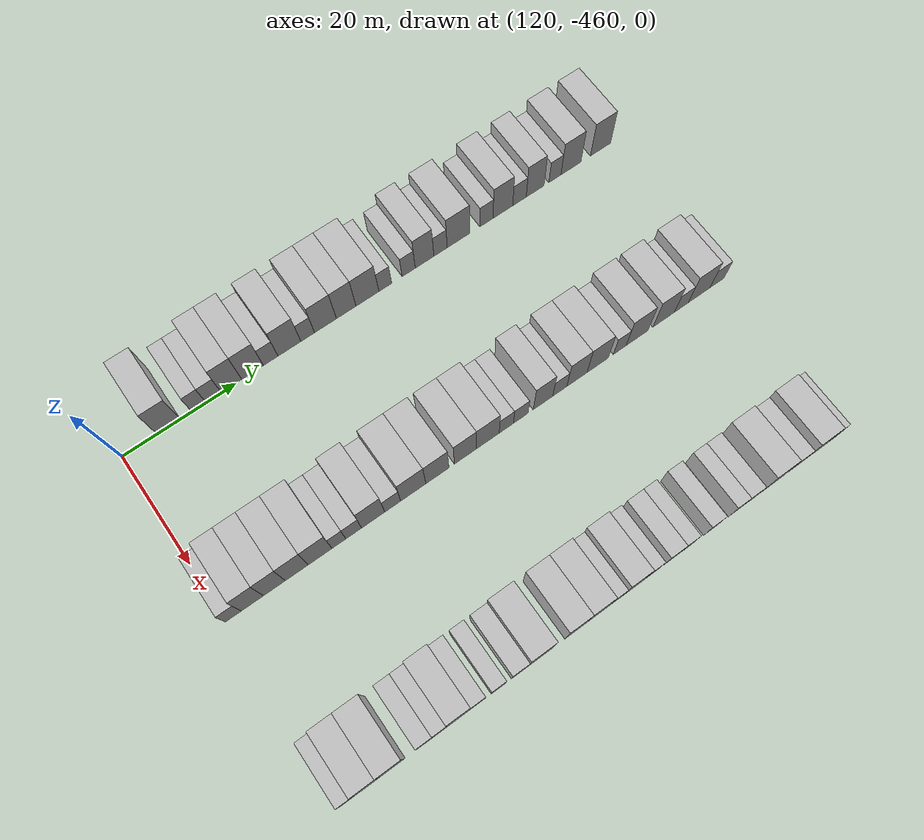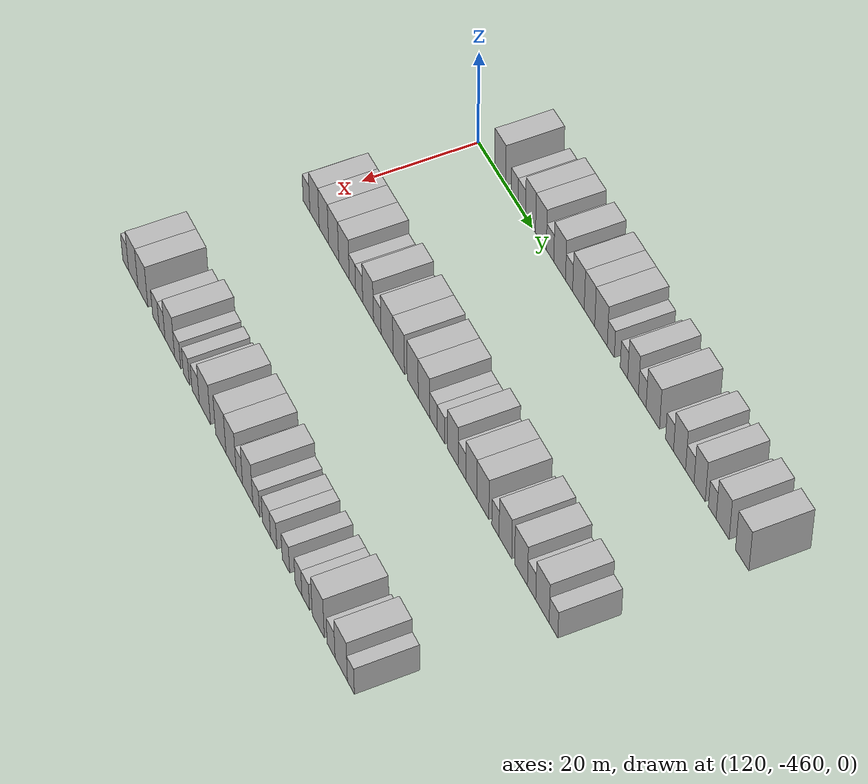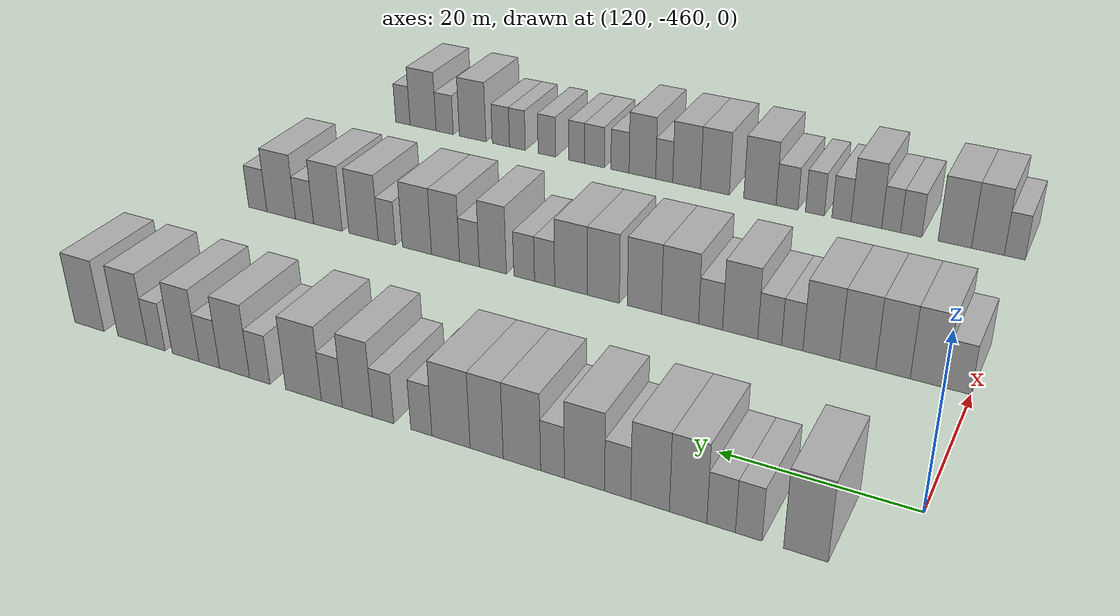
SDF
<sdf version="1.6">
 <world name="default">
  <model name="building_679">
   <static>1</static>
   <pose>115.0000 -451.9588 0 0.000000 0.000000 0.000000</pose>
   <link name="link">
    <pose>0 0 4.50 0 0 0</pose>
    <collision name="collision"><geometry><box><size>10.0000 4.0819 9.0000</size></box></geometry></collision>
    <visual name="visual">
     <cast_shadows>0</cast_shadows>
     <geometry><box><size>10.0000 4.0819 9.0000</size></box></geometry>
     <material>
      <script>
       <uri>model://HANNAS_wall/materials/scripts</uri>
       <uri>model://HANNAS_wall/materials/textures</uri>
       <name>vrc/HANNAS_wall</name>
      </script>
     </material>
    </visual>
   </link>
  </model>
  <model name="building_680">
   <static>1</static>
   <pose>115.0000 -446.6579 0 0.000000 0.000000 0.000000</pose>
   <link name="link">
    <pose>0 0 3.00 0 0 0</pose>
    <collision name="collision"><geometry><box><size>10.0000 2.5201 6.0000</size></box></geometry></collision>
    <visual name="visual">
     <cast_shadows>0</cast_shadows>
     <geometry><box><size>10.0000 2.5201 6.0000</size></box></geometry>
     <material>
      <script>
       <uri>model://HANNAS_wall/materials/scripts</uri>
       <uri>model://HANNAS_wall/materials/textures</uri>
       <name>vrc/HANNAS_wall</name>
      </script>
     </material>
    </visual>
   </link>
  </model>
  <model name="building_681">
   <static>1</static>
   <pose>115.0000 -444.0245 0 0.000000 0.000000 0.000000</pose>
   <link name="link">
    <pose>0 0 3.00 0 0 0</pose>
    <collision name="collision"><geometry><box><size>10.0000 2.7466 6.0000</size></box></geometry></collision>
    <visual name="visual">
     <cast_shadows>0</cast_shadows>
     <geometry><box><size>10.0000 2.7466 6.0000</size></box></geometry>
     <material>
      <script>
       <uri>model://HANNAS_wall/materials/scripts</uri>
       <uri>model://HANNAS_wall/materials/textures</uri>
       <name>vrc/HANNAS_wall</name>
      </script>
     </material>
    </visual>
   </link>
  </model>
  <model name="building_682">
   <static>1</static>
   <pose>115.0000 -440.8171 0 0.000000 0.000000 0.000000</pose>
   <link name="link">
    <pose>0 0 4.50 0 0 0</pose>
    <collision name="collision"><geometry><box><size>10.0000 3.6683 9.0000</size></box></geometry></collision>
    <visual name="visual">
     <cast_shadows>0</cast_shadows>
     <geometry><box><size>10.0000 3.6683 9.0000</size></box></geometry>
     <material>
      <script>
       <uri>model://HANNAS_wall/materials/scripts</uri>
       <uri>model://HANNAS_wall/materials/textures</uri>
       <name>vrc/HANNAS_wall</name>
      </script>
     </material>
    </visual>
   </link>
  </model>
  <model name="building_683">
   <static>1</static>
   <pose>115.0000 -437.0400 0 0.000000 0.000000 0.000000</pose>
   <link name="link">
    <pose>0 0 4.50 0 0 0</pose>
    <collision name="collision"><geometry><box><size>10.0000 3.8859 9.0000</size></box></geometry></collision>
    <visual name="visual">
     <cast_shadows>0</cast_shadows>
     <geometry><box><size>10.0000 3.8859 9.0000</size></box></geometry>
     <material>
      <script>
       <uri>model://HANNAS_wall/materials/scripts</uri>
       <uri>model://HANNAS_wall/materials/textures</uri>
       <name>vrc/HANNAS_wall</name>
      </script>
     </material>
    </visual>
   </link>
  </model>
  <model name="building_684">
   <static>1</static>
   <pose>115.0000 -433.7683 0 0.000000 0.000000 0.000000</pose>
   <link name="link">
    <pose>0 0 3.00 0 0 0</pose>
    <collision name="collision"><geometry><box><size>10.0000 2.6577 6.0000</size></box></geometry></collision>
    <visual name="visual">
     <cast_shadows>0</cast_shadows>
     <geometry><box><size>10.0000 2.6577 6.0000</size></box></geometry>
     <material>
      <script>
       <uri>model://HANNAS_wall/materials/scripts</uri>
       <uri>model://HANNAS_wall/materials/textures</uri>
       <name>vrc/HANNAS_wall</name>
      </script>
     </material>
    </visual>
   </link>
  </model>
  <model name="building_685">
   <static>1</static>
   <pose>115.0000 -430.3431 0 0.000000 0.000000 0.000000</pose>
   <link name="link">
    <pose>0 0 4.50 0 0 0</pose>
    <collision name="collision"><geometry><box><size>10.0000 4.1926 9.0000</size></box></geometry></collision>
    <visual name="visual">
     <cast_shadows>0</cast_shadows>
     <geometry><box><size>10.0000 4.1926 9.0000</size></box></geometry>
     <material>
      <script>
       <uri>model://HANNAS_wall/materials/scripts</uri>
       <uri>model://HANNAS_wall/materials/textures</uri>
       <name>vrc/HANNAS_wall</name>
      </script>
     </material>
    </visual>
   </link>
  </model>
  <model name="building_686">
   <static>1</static>
   <pose>115.0000 -426.9840 0 0.000000 0.000000 0.000000</pose>
   <link name="link">
    <pose>0 0 3.00 0 0 0</pose>
    <collision name="collision"><geometry><box><size>10.0000 2.5257 6.0000</size></box></geometry></collision>
    <visual name="visual">
     <cast_shadows>0</cast_shadows>
     <geometry><box><size>10.0000 2.5257 6.0000</size></box></geometry>
     <material>
      <script>
       <uri>model://HANNAS_wall/materials/scripts</uri>
       <uri>model://HANNAS_wall/materials/textures</uri>
       <name>vrc/HANNAS_wall</name>
      </script>
     </material>
    </visual>
   </link>
  </model>
  <model name="building_687">
   <static>1</static>
   <pose>115.0000 -423.6895 0 0.000000 0.000000 0.000000</pose>
   <link name="link">
    <pose>0 0 4.50 0 0 0</pose>
    <collision name="collision"><geometry><box><size>10.0000 4.0634 9.0000</size></box></geometry></collision>
    <visual name="visual">
     <cast_shadows>0</cast_shadows>
     <geometry><box><size>10.0000 4.0634 9.0000</size></box></geometry>
     <material>
      <script>
       <uri>model://HANNAS_wall/materials/scripts</uri>
       <uri>model://HANNAS_wall/materials/textures</uri>
       <name>vrc/HANNAS_wall</name>
      </script>
     </material>
    </visual>
   </link>
  </model>
  <model name="building_688">
   <static>1</static>
   <pose>115.0000 -419.8200 0 0.000000 0.000000 0.000000</pose>
   <link name="link">
    <pose>0 0 4.50 0 0 0</pose>
    <collision name="collision"><geometry><box><size>10.0000 3.6756 9.0000</size></box></geometry></collision>
    <visual name="visual">
     <cast_shadows>0</cast_shadows>
     <geometry><box><size>10.0000 3.6756 9.0000</size></box></geometry>
     <material>
      <script>
       <uri>model://HANNAS_wall/materials/scripts</uri>
       <uri>model://HANNAS_wall/materials/textures</uri>
       <name>vrc/HANNAS_wall</name>
      </script>
     </material>
    </visual>
   </link>
  </model>
  <model name="building_689">
   <static>1</static>
   <pose>115.0000 -415.8161 0 0.000000 0.000000 0.000000</pose>
   <link name="link">
    <pose>0 0 4.50 0 0 0</pose>
    <collision name="collision"><geometry><box><size>10.0000 4.3321 9.0000</size></box></geometry></collision>
    <visual name="visual">
     <cast_shadows>0</cast_shadows>
     <geometry><box><size>10.0000 4.3321 9.0000</size></box></geometry>
     <material>
      <script>
       <uri>model://HANNAS_wall/materials/scripts</uri>
       <uri>model://HANNAS_wall/materials/textures</uri>
       <name>vrc/HANNAS_wall</name>
      </script>
     </material>
    </visual>
   </link>
  </model>
  <model name="building_690">
   <static>1</static>
   <pose>115.0000 -412.4253 0 0.000000 0.000000 0.000000</pose>
   <link name="link">
    <pose>0 0 3.00 0 0 0</pose>
    <collision name="collision"><geometry><box><size>10.0000 2.4495 6.0000</size></box></geometry></collision>
    <visual name="visual">
     <cast_shadows>0</cast_shadows>
     <geometry><box><size>10.0000 2.4495 6.0000</size></box></geometry>
     <material>
      <script>
       <uri>model://HANNAS_wall/materials/scripts</uri>
       <uri>model://HANNAS_wall/materials/textures</uri>
       <name>vrc/HANNAS_wall</name>
      </script>
     </material>
    </visual>
   </link>
  </model>
  <model name="building_691">
   <static>1</static>
   <pose>115.0000 -407.9323 0 0.000000 0.000000 0.000000</pose>
   <link name="link">
    <pose>0 0 3.00 0 0 0</pose>
    <collision name="collision"><geometry><box><size>10.0000 2.5365 6.0000</size></box></geometry></collision>
    <visual name="visual">
     <cast_shadows>0</cast_shadows>
     <geometry><box><size>10.0000 2.5365 6.0000</size></box></geometry>
     <material>
      <script>
       <uri>model://HANNAS_wall/materials/scripts</uri>
       <uri>model://HANNAS_wall/materials/textures</uri>
       <name>vrc/HANNAS_wall</name>
      </script>
     </material>
    </visual>
   </link>
  </model>
  <model name="building_692">
   <static>1</static>
   <pose>115.0000 -404.8576 0 0.000000 0.000000 0.000000</pose>
   <link name="link">
    <pose>0 0 4.50 0 0 0</pose>
    <collision name="collision"><geometry><box><size>10.0000 3.6130 9.0000</size></box></geometry></collision>
    <visual name="visual">
     <cast_shadows>0</cast_shadows>
     <geometry><box><size>10.0000 3.6130 9.0000</size></box></geometry>
     <material>
      <script>
       <uri>model://HANNAS_wall/materials/scripts</uri>
       <uri>model://HANNAS_wall/materials/textures</uri>
       <name>vrc/HANNAS_wall</name>
      </script>
     </material>
    </visual>
   </link>
  </model>
  <model name="building_693">
   <static>1</static>
   <pose>115.0000 -401.7550 0 0.000000 0.000000 0.000000</pose>
   <link name="link">
    <pose>0 0 3.00 0 0 0</pose>
    <collision name="collision"><geometry><box><size>10.0000 2.5923 6.0000</size></box></geometry></collision>
    <visual name="visual">
     <cast_shadows>0</cast_shadows>
     <geometry><box><size>10.0000 2.5923 6.0000</size></box></geometry>
     <material>
      <script>
       <uri>model://HANNAS_wall/materials/scripts</uri>
       <uri>model://HANNAS_wall/materials/textures</uri>
       <name>vrc/HANNAS_wall</name>
      </script>
     </material>
    </visual>
   </link>
  </model>
  <model name="building_694">
   <static>1</static>
   <pose>115.0000 -398.2222 0 0.000000 0.000000 0.000000</pose>
   <link name="link">
    <pose>0 0 4.50 0 0 0</pose>
    <collision name="collision"><geometry><box><size>10.0000 4.4732 9.0000</size></box></geometry></collision>
    <visual name="visual">
     <cast_shadows>0</cast_shadows>
     <geometry><box><size>10.0000 4.4732 9.0000</size></box></geometry>
     <material>
      <script>
       <uri>model://HANNAS_wall/materials/scripts</uri>
       <uri>model://HANNAS_wall/materials/textures</uri>
       <name>vrc/HANNAS_wall</name>
      </script>
     </material>
    </visual>
   </link>
  </model>
  <model name="building_695">
   <static>1</static>
   <pose>115.0000 -392.6724 0 0.000000 0.000000 0.000000</pose>
   <link name="link">
    <pose>0 0 3.00 0 0 0</pose>
    <collision name="collision"><geometry><box><size>10.0000 2.6264 6.0000</size></box></geometry></collision>
    <visual name="visual">
     <cast_shadows>0</cast_shadows>
     <geometry><box><size>10.0000 2.6264 6.0000</size></box></geometry>
     <material>
      <script>
       <uri>model://HANNAS_wall/materials/scripts</uri>
       <uri>model://HANNAS_wall/materials/textures</uri>
       <name>vrc/HANNAS_wall</name>
      </script>
     </material>
    </visual>
   </link>
  </model>
  <model name="building_696">
   <static>1</static>
   <pose>115.0000 -389.3885 0 0.000000 0.000000 0.000000</pose>
   <link name="link">
    <pose>0 0 4.50 0 0 0</pose>
    <collision name="collision"><geometry><box><size>10.0000 3.9413 9.0000</size></box></geometry></collision>
    <visual name="visual">
     <cast_shadows>0</cast_shadows>
     <geometry><box><size>10.0000 3.9413 9.0000</size></box></geometry>
     <material>
      <script>
       <uri>model://HANNAS_wall/materials/scripts</uri>
       <uri>model://HANNAS_wall/materials/textures</uri>
       <name>vrc/HANNAS_wall</name>
      </script>
     </material>
    </visual>
   </link>
  </model>
  <model name="building_697">
   <static>1</static>
   <pose>115.0000 -386.0474 0 0.000000 0.000000 0.000000</pose>
   <link name="link">
    <pose>0 0 3.00 0 0 0</pose>
    <collision name="collision"><geometry><box><size>10.0000 2.7409 6.0000</size></box></geometry></collision>
    <visual name="visual">
     <cast_shadows>0</cast_shadows>
     <geometry><box><size>10.0000 2.7409 6.0000</size></box></geometry>
     <material>
      <script>
       <uri>model://HANNAS_wall/materials/scripts</uri>
       <uri>model://HANNAS_wall/materials/textures</uri>
       <name>vrc/HANNAS_wall</name>
      </script>
     </material>
    </visual>
   </link>
  </model>
  <model name="building_698">
   <static>1</static>
   <pose>115.0000 -382.8616 0 0.000000 0.000000 0.000000</pose>
   <link name="link">
    <pose>0 0 4.50 0 0 0</pose>
    <collision name="collision"><geometry><box><size>10.0000 3.6306 9.0000</size></box></geometry></collision>
    <visual name="visual">
     <cast_shadows>0</cast_shadows>
     <geometry><box><size>10.0000 3.6306 9.0000</size></box></geometry>
     <material>
      <script>
       <uri>model://HANNAS_wall/materials/scripts</uri>
       <uri>model://HANNAS_wall/materials/textures</uri>
       <name>vrc/HANNAS_wall</name>
      </script>
     </material>
    </visual>
   </link>
  </model>
  <model name="building_699">
   <static>1</static>
   <pose>115.0000 -378.8078 0 0.000000 0.000000 0.000000</pose>
   <link name="link">
    <pose>0 0 3.00 0 0 0</pose>
    <collision name="collision"><geometry><box><size>10.0000 2.4770 6.0000</size></box></geometry></collision>
    <visual name="visual">
     <cast_shadows>0</cast_shadows>
     <geometry><box><size>10.0000 2.4770 6.0000</size></box></geometry>
     <material>
      <script>
       <uri>model://HANNAS_wall/materials/scripts</uri>
       <uri>model://HANNAS_wall/materials/textures</uri>
       <name>vrc/HANNAS_wall</name>
      </script>
     </material>
    </visual>
   </link>
  </model>
  <model name="building_700">
   <static>1</static>
   <pose>115.0000 -375.4993 0 0.000000 0.000000 0.000000</pose>
   <link name="link">
    <pose>0 0 4.50 0 0 0</pose>
    <collision name="collision"><geometry><box><size>10.0000 4.1400 9.0000</size></box></geometry></collision>
    <visual name="visual">
     <cast_shadows>0</cast_shadows>
     <geometry><box><size>10.0000 4.1400 9.0000</size></box></geometry>
     <material>
      <script>
       <uri>model://HANNAS_wall/materials/scripts</uri>
       <uri>model://HANNAS_wall/materials/textures</uri>
       <name>vrc/HANNAS_wall</name>
      </script>
     </material>
    </visual>
   </link>
  </model>
  <model name="building_701">
   <static>1</static>
   <pose>115.0000 -369.3167 0 0.000000 0.000000 0.000000</pose>
   <link name="link">
    <pose>0 0 4.50 0 0 0</pose>
    <collision name="collision"><geometry><box><size>10.0000 4.2252 9.0000</size></box></geometry></collision>
    <visual name="visual">
     <cast_shadows>0</cast_shadows>
     <geometry><box><size>10.0000 4.2252 9.0000</size></box></geometry>
     <material>
      <script>
       <uri>model://HANNAS_wall/materials/scripts</uri>
       <uri>model://HANNAS_wall/materials/textures</uri>
       <name>vrc/HANNAS_wall</name>
      </script>
     </material>
    </visual>
   </link>
  </model>
  <model name="building_908">
   <static>1</static>
   <pose>145.0000 -458.6682 0 0.000000 0.000000 0.000000</pose>
   <link name="link">
    <pose>0 0 3.00 0 0 0</pose>
    <collision name="collision"><geometry><box><size>10.0000 2.6636 6.0000</size></box></geometry></collision>
    <visual name="visual">
     <cast_shadows>0</cast_shadows>
     <geometry><box><size>10.0000 2.6636 6.0000</size></box></geometry>
     <material>
      <script>
       <uri>model://HANNAS_wall/materials/scripts</uri>
       <uri>model://HANNAS_wall/materials/textures</uri>
       <name>vrc/HANNAS_wall</name>
      </script>
     </material>
    </visual>
   </link>
  </model>
  <model name="building_909">
   <static>1</static>
   <pose>145.0000 -455.4907 0 0.000000 0.000000 0.000000</pose>
   <link name="link">
    <pose>0 0 4.50 0 0 0</pose>
    <collision name="collision"><geometry><box><size>10.0000 3.6914 9.0000</size></box></geometry></collision>
    <visual name="visual">
     <cast_shadows>0</cast_shadows>
     <geometry><box><size>10.0000 3.6914 9.0000</size></box></geometry>
     <material>
      <script>
       <uri>model://HANNAS_wall/materials/scripts</uri>
       <uri>model://HANNAS_wall/materials/textures</uri>
       <name>vrc/HANNAS_wall</name>
      </script>
     </material>
    </visual>
   </link>
  </model>
  <model name="building_910">
   <static>1</static>
   <pose>145.0000 -451.7987 0 0.000000 0.000000 0.000000</pose>
   <link name="link">
    <pose>0 0 4.50 0 0 0</pose>
    <collision name="collision"><geometry><box><size>10.0000 3.6927 9.0000</size></box></geometry></collision>
    <visual name="visual">
     <cast_shadows>0</cast_shadows>
     <geometry><box><size>10.0000 3.6927 9.0000</size></box></geometry>
     <material>
      <script>
       <uri>model://HANNAS_wall/materials/scripts</uri>
       <uri>model://HANNAS_wall/materials/textures</uri>
       <name>vrc/HANNAS_wall</name>
      </script>
     </material>
    </visual>
   </link>
  </model>
  <model name="building_911">
   <static>1</static>
   <pose>145.0000 -447.9910 0 0.000000 0.000000 0.000000</pose>
   <link name="link">
    <pose>0 0 4.50 0 0 0</pose>
    <collision name="collision"><geometry><box><size>10.0000 3.9228 9.0000</size></box></geometry></collision>
    <visual name="visual">
     <cast_shadows>0</cast_shadows>
     <geometry><box><size>10.0000 3.9228 9.0000</size></box></geometry>
     <material>
      <script>
       <uri>model://HANNAS_wall/materials/scripts</uri>
       <uri>model://HANNAS_wall/materials/textures</uri>
       <name>vrc/HANNAS_wall</name>
      </script>
     </material>
    </visual>
   </link>
  </model>
  <model name="building_912">
   <static>1</static>
   <pose>145.0000 -443.9837 0 0.000000 0.000000 0.000000</pose>
   <link name="link">
    <pose>0 0 4.50 0 0 0</pose>
    <collision name="collision"><geometry><box><size>10.0000 4.0919 9.0000</size></box></geometry></collision>
    <visual name="visual">
     <cast_shadows>0</cast_shadows>
     <geometry><box><size>10.0000 4.0919 9.0000</size></box></geometry>
     <material>
      <script>
       <uri>model://HANNAS_wall/materials/scripts</uri>
       <uri>model://HANNAS_wall/materials/textures</uri>
       <name>vrc/HANNAS_wall</name>
      </script>
     </material>
    </visual>
   </link>
  </model>
  <model name="building_913">
   <static>1</static>
   <pose>145.0000 -440.7342 0 0.000000 0.000000 0.000000</pose>
   <link name="link">
    <pose>0 0 3.00 0 0 0</pose>
    <collision name="collision"><geometry><box><size>10.0000 2.4070 6.0000</size></box></geometry></collision>
    <visual name="visual">
     <cast_shadows>0</cast_shadows>
     <geometry><box><size>10.0000 2.4070 6.0000</size></box></geometry>
     <material>
      <script>
       <uri>model://HANNAS_wall/materials/scripts</uri>
       <uri>model://HANNAS_wall/materials/textures</uri>
       <name>vrc/HANNAS_wall</name>
      </script>
     </material>
    </visual>
   </link>
  </model>
  <model name="building_914">
   <static>1</static>
   <pose>145.0000 -438.1656 0 0.000000 0.000000 0.000000</pose>
   <link name="link">
    <pose>0 0 3.00 0 0 0</pose>
    <collision name="collision"><geometry><box><size>10.0000 2.7303 6.0000</size></box></geometry></collision>
    <visual name="visual">
     <cast_shadows>0</cast_shadows>
     <geometry><box><size>10.0000 2.7303 6.0000</size></box></geometry>
     <material>
      <script>
       <uri>model://HANNAS_wall/materials/scripts</uri>
       <uri>model://HANNAS_wall/materials/textures</uri>
       <name>vrc/HANNAS_wall</name>
      </script>
     </material>
    </visual>
   </link>
  </model>
  <model name="building_915">
   <static>1</static>
   <pose>145.0000 -434.7531 0 0.000000 0.000000 0.000000</pose>
   <link name="link">
    <pose>0 0 4.50 0 0 0</pose>
    <collision name="collision"><geometry><box><size>10.0000 4.0946 9.0000</size></box></geometry></collision>
    <visual name="visual">
     <cast_shadows>0</cast_shadows>
     <geometry><box><size>10.0000 4.0946 9.0000</size></box></geometry>
     <material>
      <script>
       <uri>model://HANNAS_wall/materials/scripts</uri>
       <uri>model://HANNAS_wall/materials/textures</uri>
       <name>vrc/HANNAS_wall</name>
      </script>
     </material>
    </visual>
   </link>
  </model>
  <model name="building_916">
   <static>1</static>
   <pose>145.0000 -431.2801 0 0.000000 0.000000 0.000000</pose>
   <link name="link">
    <pose>0 0 3.00 0 0 0</pose>
    <collision name="collision"><geometry><box><size>10.0000 2.8513 6.0000</size></box></geometry></collision>
    <visual name="visual">
     <cast_shadows>0</cast_shadows>
     <geometry><box><size>10.0000 2.8513 6.0000</size></box></geometry>
     <material>
      <script>
       <uri>model://HANNAS_wall/materials/scripts</uri>
       <uri>model://HANNAS_wall/materials/textures</uri>
       <name>vrc/HANNAS_wall</name>
      </script>
     </material>
    </visual>
   </link>
  </model>
  <model name="building_917">
   <static>1</static>
   <pose>145.0000 -427.6070 0 0.000000 0.000000 0.000000</pose>
   <link name="link">
    <pose>0 0 4.50 0 0 0</pose>
    <collision name="collision"><geometry><box><size>10.0000 4.4949 9.0000</size></box></geometry></collision>
    <visual name="visual">
     <cast_shadows>0</cast_shadows>
     <geometry><box><size>10.0000 4.4949 9.0000</size></box></geometry>
     <material>
      <script>
       <uri>model://HANNAS_wall/materials/scripts</uri>
       <uri>model://HANNAS_wall/materials/textures</uri>
       <name>vrc/HANNAS_wall</name>
      </script>
     </material>
    </visual>
   </link>
  </model>
  <model name="building_918">
   <static>1</static>
   <pose>145.0000 -423.2605 0 0.000000 0.000000 0.000000</pose>
   <link name="link">
    <pose>0 0 4.50 0 0 0</pose>
    <collision name="collision"><geometry><box><size>10.0000 4.1982 9.0000</size></box></geometry></collision>
    <visual name="visual">
     <cast_shadows>0</cast_shadows>
     <geometry><box><size>10.0000 4.1982 9.0000</size></box></geometry>
     <material>
      <script>
       <uri>model://HANNAS_wall/materials/scripts</uri>
       <uri>model://HANNAS_wall/materials/textures</uri>
       <name>vrc/HANNAS_wall</name>
      </script>
     </material>
    </visual>
   </link>
  </model>
  <model name="building_919">
   <static>1</static>
   <pose>145.0000 -418.1280 0 0.000000 0.000000 0.000000</pose>
   <link name="link">
    <pose>0 0 4.50 0 0 0</pose>
    <collision name="collision"><geometry><box><size>10.0000 4.0667 9.0000</size></box></geometry></collision>
    <visual name="visual">
     <cast_shadows>0</cast_shadows>
     <geometry><box><size>10.0000 4.0667 9.0000</size></box></geometry>
     <material>
      <script>
       <uri>model://HANNAS_wall/materials/scripts</uri>
       <uri>model://HANNAS_wall/materials/textures</uri>
       <name>vrc/HANNAS_wall</name>
      </script>
     </material>
    </visual>
   </link>
  </model>
  <model name="building_920">
   <static>1</static>
   <pose>145.0000 -414.0007 0 0.000000 0.000000 0.000000</pose>
   <link name="link">
    <pose>0 0 4.50 0 0 0</pose>
    <collision name="collision"><geometry><box><size>10.0000 4.1878 9.0000</size></box></geometry></collision>
    <visual name="visual">
     <cast_shadows>0</cast_shadows>
     <geometry><box><size>10.0000 4.1878 9.0000</size></box></geometry>
     <material>
      <script>
       <uri>model://HANNAS_wall/materials/scripts</uri>
       <uri>model://HANNAS_wall/materials/textures</uri>
       <name>vrc/HANNAS_wall</name>
      </script>
     </material>
    </visual>
   </link>
  </model>
  <model name="building_921">
   <static>1</static>
   <pose>145.0000 -410.5822 0 0.000000 0.000000 0.000000</pose>
   <link name="link">
    <pose>0 0 3.00 0 0 0</pose>
    <collision name="collision"><geometry><box><size>10.0000 2.6492 6.0000</size></box></geometry></collision>
    <visual name="visual">
     <cast_shadows>0</cast_shadows>
     <geometry><box><size>10.0000 2.6492 6.0000</size></box></geometry>
     <material>
      <script>
       <uri>model://HANNAS_wall/materials/scripts</uri>
       <uri>model://HANNAS_wall/materials/textures</uri>
       <name>vrc/HANNAS_wall</name>
      </script>
     </material>
    </visual>
   </link>
  </model>
  <model name="building_922">
   <static>1</static>
   <pose>145.0000 -407.8827 0 0.000000 0.000000 0.000000</pose>
   <link name="link">
    <pose>0 0 3.00 0 0 0</pose>
    <collision name="collision"><geometry><box><size>10.0000 2.7499 6.0000</size></box></geometry></collision>
    <visual name="visual">
     <cast_shadows>0</cast_shadows>
     <geometry><box><size>10.0000 2.7499 6.0000</size></box></geometry>
     <material>
      <script>
       <uri>model://HANNAS_wall/materials/scripts</uri>
       <uri>model://HANNAS_wall/materials/textures</uri>
       <name>vrc/HANNAS_wall</name>
      </script>
     </material>
    </visual>
   </link>
  </model>
  <model name="building_923">
   <static>1</static>
   <pose>145.0000 -403.6668 0 0.000000 0.000000 0.000000</pose>
   <link name="link">
    <pose>0 0 4.50 0 0 0</pose>
    <collision name="collision"><geometry><box><size>10.0000 3.6818 9.0000</size></box></geometry></collision>
    <visual name="visual">
     <cast_shadows>0</cast_shadows>
     <geometry><box><size>10.0000 3.6818 9.0000</size></box></geometry>
     <material>
      <script>
       <uri>model://HANNAS_wall/materials/scripts</uri>
       <uri>model://HANNAS_wall/materials/textures</uri>
       <name>vrc/HANNAS_wall</name>
      </script>
     </material>
    </visual>
   </link>
  </model>
  <model name="building_924">
   <static>1</static>
   <pose>145.0000 -400.4726 0 0.000000 0.000000 0.000000</pose>
   <link name="link">
    <pose>0 0 3.00 0 0 0</pose>
    <collision name="collision"><geometry><box><size>10.0000 2.7067 6.0000</size></box></geometry></collision>
    <visual name="visual">
     <cast_shadows>0</cast_shadows>
     <geometry><box><size>10.0000 2.7067 6.0000</size></box></geometry>
     <material>
      <script>
       <uri>model://HANNAS_wall/materials/scripts</uri>
       <uri>model://HANNAS_wall/materials/textures</uri>
       <name>vrc/HANNAS_wall</name>
      </script>
     </material>
    </visual>
   </link>
  </model>
  <model name="building_925">
   <static>1</static>
   <pose>145.0000 -397.1596 0 0.000000 0.000000 0.000000</pose>
   <link name="link">
    <pose>0 0 4.50 0 0 0</pose>
    <collision name="collision"><geometry><box><size>10.0000 3.9192 9.0000</size></box></geometry></collision>
    <visual name="visual">
     <cast_shadows>0</cast_shadows>
     <geometry><box><size>10.0000 3.9192 9.0000</size></box></geometry>
     <material>
      <script>
       <uri>model://HANNAS_wall/materials/scripts</uri>
       <uri>model://HANNAS_wall/materials/textures</uri>
       <name>vrc/HANNAS_wall</name>
      </script>
     </material>
    </visual>
   </link>
  </model>
  <model name="building_926">
   <static>1</static>
   <pose>145.0000 -393.1279 0 0.000000 0.000000 0.000000</pose>
   <link name="link">
    <pose>0 0 4.50 0 0 0</pose>
    <collision name="collision"><geometry><box><size>10.0000 4.1442 9.0000</size></box></geometry></collision>
    <visual name="visual">
     <cast_shadows>0</cast_shadows>
     <geometry><box><size>10.0000 4.1442 9.0000</size></box></geometry>
     <material>
      <script>
       <uri>model://HANNAS_wall/materials/scripts</uri>
       <uri>model://HANNAS_wall/materials/textures</uri>
       <name>vrc/HANNAS_wall</name>
      </script>
     </material>
    </visual>
   </link>
  </model>
  <model name="building_927">
   <static>1</static>
   <pose>145.0000 -388.8001 0 0.000000 0.000000 0.000000</pose>
   <link name="link">
    <pose>0 0 3.00 0 0 0</pose>
    <collision name="collision"><geometry><box><size>10.0000 2.5114 6.0000</size></box></geometry></collision>
    <visual name="visual">
     <cast_shadows>0</cast_shadows>
     <geometry><box><size>10.0000 2.5114 6.0000</size></box></geometry>
     <material>
      <script>
       <uri>model://HANNAS_wall/materials/scripts</uri>
       <uri>model://HANNAS_wall/materials/textures</uri>
       <name>vrc/HANNAS_wall</name>
      </script>
     </material>
    </visual>
   </link>
  </model>
  <model name="building_928">
   <static>1</static>
   <pose>145.0000 -385.3816 0 0.000000 0.000000 0.000000</pose>
   <link name="link">
    <pose>0 0 4.50 0 0 0</pose>
    <collision name="collision"><geometry><box><size>10.0000 4.3256 9.0000</size></box></geometry></collision>
    <visual name="visual">
     <cast_shadows>0</cast_shadows>
     <geometry><box><size>10.0000 4.3256 9.0000</size></box></geometry>
     <material>
      <script>
       <uri>model://HANNAS_wall/materials/scripts</uri>
       <uri>model://HANNAS_wall/materials/textures</uri>
       <name>vrc/HANNAS_wall</name>
      </script>
     </material>
    </visual>
   </link>
  </model>
  <model name="building_929">
   <static>1</static>
   <pose>145.0000 -380.0533 0 0.000000 0.000000 0.000000</pose>
   <link name="link">
    <pose>0 0 4.50 0 0 0</pose>
    <collision name="collision"><geometry><box><size>10.0000 4.3312 9.0000</size></box></geometry></collision>
    <visual name="visual">
     <cast_shadows>0</cast_shadows>
     <geometry><box><size>10.0000 4.3312 9.0000</size></box></geometry>
     <material>
      <script>
       <uri>model://HANNAS_wall/materials/scripts</uri>
       <uri>model://HANNAS_wall/materials/textures</uri>
       <name>vrc/HANNAS_wall</name>
      </script>
     </material>
    </visual>
   </link>
  </model>
  <model name="building_930">
   <static>1</static>
   <pose>145.0000 -376.4987 0 0.000000 0.000000 0.000000</pose>
   <link name="link">
    <pose>0 0 3.00 0 0 0</pose>
    <collision name="collision"><geometry><box><size>10.0000 2.7779 6.0000</size></box></geometry></collision>
    <visual name="visual">
     <cast_shadows>0</cast_shadows>
     <geometry><box><size>10.0000 2.7779 6.0000</size></box></geometry>
     <material>
      <script>
       <uri>model://HANNAS_wall/materials/scripts</uri>
       <uri>model://HANNAS_wall/materials/textures</uri>
       <name>vrc/HANNAS_wall</name>
      </script>
     </material>
    </visual>
   </link>
  </model>
  <model name="building_931">
   <static>1</static>
   <pose>145.0000 -372.8818 0 0.000000 0.000000 0.000000</pose>
   <link name="link">
    <pose>0 0 4.50 0 0 0</pose>
    <collision name="collision"><geometry><box><size>10.0000 4.4560 9.0000</size></box></geometry></collision>
    <visual name="visual">
     <cast_shadows>0</cast_shadows>
     <geometry><box><size>10.0000 4.4560 9.0000</size></box></geometry>
     <material>
      <script>
       <uri>model://HANNAS_wall/materials/scripts</uri>
       <uri>model://HANNAS_wall/materials/textures</uri>
       <name>vrc/HANNAS_wall</name>
      </script>
     </material>
    </visual>
   </link>
  </model>
  <model name="building_932">
   <static>1</static>
   <pose>145.0000 -369.2108 0 0.000000 0.000000 0.000000</pose>
   <link name="link">
    <pose>0 0 3.00 0 0 0</pose>
    <collision name="collision"><geometry><box><size>10.0000 2.8861 6.0000</size></box></geometry></collision>
    <visual name="visual">
     <cast_shadows>0</cast_shadows>
     <geometry><box><size>10.0000 2.8861 6.0000</size></box></geometry>
     <material>
      <script>
       <uri>model://HANNAS_wall/materials/scripts</uri>
       <uri>model://HANNAS_wall/materials/textures</uri>
       <name>vrc/HANNAS_wall</name>
      </script>
     </material>
    </visual>
   </link>
  </model>
  <model name="building_1134">
   <static>1</static>
   <pose>175.0000 -458.7668 0 0.000000 0.000000 0.000000</pose>
   <link name="link">
    <pose>0 0 3.00 0 0 0</pose>
    <collision name="collision"><geometry><box><size>10.0000 2.4664 6.0000</size></box></geometry></collision>
    <visual name="visual">
     <cast_shadows>0</cast_shadows>
     <geometry><box><size>10.0000 2.4664 6.0000</size></box></geometry>
     <material>
      <script>
       <uri>model://HANNAS_wall/materials/scripts</uri>
       <uri>model://HANNAS_wall/materials/textures</uri>
       <name>vrc/HANNAS_wall</name>
      </script>
     </material>
    </visual>
   </link>
  </model>
  <model name="building_1135">
   <static>1</static>
   <pose>175.0000 -455.5716 0 0.000000 0.000000 0.000000</pose>
   <link name="link">
    <pose>0 0 4.50 0 0 0</pose>
    <collision name="collision"><geometry><box><size>10.0000 3.9239 9.0000</size></box></geometry></collision>
    <visual name="visual">
     <cast_shadows>0</cast_shadows>
     <geometry><box><size>10.0000 3.9239 9.0000</size></box></geometry>
     <material>
      <script>
       <uri>model://HANNAS_wall/materials/scripts</uri>
       <uri>model://HANNAS_wall/materials/textures</uri>
       <name>vrc/HANNAS_wall</name>
      </script>
     </material>
    </visual>
   </link>
  </model>
  <model name="building_1136">
   <static>1</static>
   <pose>175.0000 -451.5589 0 0.000000 0.000000 0.000000</pose>
   <link name="link">
    <pose>0 0 4.50 0 0 0</pose>
    <collision name="collision"><geometry><box><size>10.0000 4.1015 9.0000</size></box></geometry></collision>
    <visual name="visual">
     <cast_shadows>0</cast_shadows>
     <geometry><box><size>10.0000 4.1015 9.0000</size></box></geometry>
     <material>
      <script>
       <uri>model://HANNAS_wall/materials/scripts</uri>
       <uri>model://HANNAS_wall/materials/textures</uri>
       <name>vrc/HANNAS_wall</name>
      </script>
     </material>
    </visual>
   </link>
  </model>
  <model name="building_1137">
   <static>1</static>
   <pose>175.0000 -446.1749 0 0.000000 0.000000 0.000000</pose>
   <link name="link">
    <pose>0 0 3.00 0 0 0</pose>
    <collision name="collision"><geometry><box><size>10.0000 2.6664 6.0000</size></box></geometry></collision>
    <visual name="visual">
     <cast_shadows>0</cast_shadows>
     <geometry><box><size>10.0000 2.6664 6.0000</size></box></geometry>
     <material>
      <script>
       <uri>model://HANNAS_wall/materials/scripts</uri>
       <uri>model://HANNAS_wall/materials/textures</uri>
       <name>vrc/HANNAS_wall</name>
      </script>
     </material>
    </visual>
   </link>
  </model>
  <model name="building_1138">
   <static>1</static>
   <pose>175.0000 -443.6406 0 0.000000 0.000000 0.000000</pose>
   <link name="link">
    <pose>0 0 3.00 0 0 0</pose>
    <collision name="collision"><geometry><box><size>10.0000 2.4024 6.0000</size></box></geometry></collision>
    <visual name="visual">
     <cast_shadows>0</cast_shadows>
     <geometry><box><size>10.0000 2.4024 6.0000</size></box></geometry>
     <material>
      <script>
       <uri>model://HANNAS_wall/materials/scripts</uri>
       <uri>model://HANNAS_wall/materials/textures</uri>
       <name>vrc/HANNAS_wall</name>
      </script>
     </material>
    </visual>
   </link>
  </model>
  <model name="building_1139">
   <static>1</static>
   <pose>175.0000 -440.4776 0 0.000000 0.000000 0.000000</pose>
   <link name="link">
    <pose>0 0 4.50 0 0 0</pose>
    <collision name="collision"><geometry><box><size>10.0000 3.9235 9.0000</size></box></geometry></collision>
    <visual name="visual">
     <cast_shadows>0</cast_shadows>
     <geometry><box><size>10.0000 3.9235 9.0000</size></box></geometry>
     <material>
      <script>
       <uri>model://HANNAS_wall/materials/scripts</uri>
       <uri>model://HANNAS_wall/materials/textures</uri>
       <name>vrc/HANNAS_wall</name>
      </script>
     </material>
    </visual>
   </link>
  </model>
  <model name="building_1140">
   <static>1</static>
   <pose>175.0000 -437.2699 0 0.000000 0.000000 0.000000</pose>
   <link name="link">
    <pose>0 0 3.00 0 0 0</pose>
    <collision name="collision"><geometry><box><size>10.0000 2.4920 6.0000</size></box></geometry></collision>
    <visual name="visual">
     <cast_shadows>0</cast_shadows>
     <geometry><box><size>10.0000 2.4920 6.0000</size></box></geometry>
     <material>
      <script>
       <uri>model://HANNAS_wall/materials/scripts</uri>
       <uri>model://HANNAS_wall/materials/textures</uri>
       <name>vrc/HANNAS_wall</name>
      </script>
     </material>
    </visual>
   </link>
  </model>
  <model name="building_1141">
   <static>1</static>
   <pose>175.0000 -433.7793 0 0.000000 0.000000 0.000000</pose>
   <link name="link">
    <pose>0 0 3.00 0 0 0</pose>
    <collision name="collision"><geometry><box><size>10.0000 2.4893 6.0000</size></box></geometry></collision>
    <visual name="visual">
     <cast_shadows>0</cast_shadows>
     <geometry><box><size>10.0000 2.4893 6.0000</size></box></geometry>
     <material>
      <script>
       <uri>model://HANNAS_wall/materials/scripts</uri>
       <uri>model://HANNAS_wall/materials/textures</uri>
       <name>vrc/HANNAS_wall</name>
      </script>
     </material>
    </visual>
   </link>
  </model>
  <model name="building_1142">
   <static>1</static>
   <pose>175.0000 -430.0661 0 0.000000 0.000000 0.000000</pose>
   <link name="link">
    <pose>0 0 3.00 0 0 0</pose>
    <collision name="collision"><geometry><box><size>10.0000 2.9370 6.0000</size></box></geometry></collision>
    <visual name="visual">
     <cast_shadows>0</cast_shadows>
     <geometry><box><size>10.0000 2.9370 6.0000</size></box></geometry>
     <material>
      <script>
       <uri>model://HANNAS_wall/materials/scripts</uri>
       <uri>model://HANNAS_wall/materials/textures</uri>
       <name>vrc/HANNAS_wall</name>
      </script>
     </material>
    </visual>
   </link>
  </model>
  <model name="building_1143">
   <static>1</static>
   <pose>175.0000 -426.3898 0 0.000000 0.000000 0.000000</pose>
   <link name="link">
    <pose>0 0 4.50 0 0 0</pose>
    <collision name="collision"><geometry><box><size>10.0000 4.4158 9.0000</size></box></geometry></collision>
    <visual name="visual">
     <cast_shadows>0</cast_shadows>
     <geometry><box><size>10.0000 4.4158 9.0000</size></box></geometry>
     <material>
      <script>
       <uri>model://HANNAS_wall/materials/scripts</uri>
       <uri>model://HANNAS_wall/materials/textures</uri>
       <name>vrc/HANNAS_wall</name>
      </script>
     </material>
    </visual>
   </link>
  </model>
  <model name="building_1144">
   <static>1</static>
   <pose>175.0000 -420.1617 0 0.000000 0.000000 0.000000</pose>
   <link name="link">
    <pose>0 0 4.50 0 0 0</pose>
    <collision name="collision"><geometry><box><size>10.0000 4.0403 9.0000</size></box></geometry></collision>
    <visual name="visual">
     <cast_shadows>0</cast_shadows>
     <geometry><box><size>10.0000 4.0403 9.0000</size></box></geometry>
     <material>
      <script>
       <uri>model://HANNAS_wall/materials/scripts</uri>
       <uri>model://HANNAS_wall/materials/textures</uri>
       <name>vrc/HANNAS_wall</name>
      </script>
     </material>
    </visual>
   </link>
  </model>
  <model name="building_1145">
   <static>1</static>
   <pose>175.0000 -416.1594 0 0.000000 0.000000 0.000000</pose>
   <link name="link">
    <pose>0 0 4.50 0 0 0</pose>
    <collision name="collision"><geometry><box><size>10.0000 3.9644 9.0000</size></box></geometry></collision>
    <visual name="visual">
     <cast_shadows>0</cast_shadows>
     <geometry><box><size>10.0000 3.9644 9.0000</size></box></geometry>
     <material>
      <script>
       <uri>model://HANNAS_wall/materials/scripts</uri>
       <uri>model://HANNAS_wall/materials/textures</uri>
       <name>vrc/HANNAS_wall</name>
      </script>
     </material>
    </visual>
   </link>
  </model>
  <model name="building_1146">
   <static>1</static>
   <pose>175.0000 -412.9530 0 0.000000 0.000000 0.000000</pose>
   <link name="link">
    <pose>0 0 3.00 0 0 0</pose>
    <collision name="collision"><geometry><box><size>10.0000 2.4483 6.0000</size></box></geometry></collision>
    <visual name="visual">
     <cast_shadows>0</cast_shadows>
     <geometry><box><size>10.0000 2.4483 6.0000</size></box></geometry>
     <material>
      <script>
       <uri>model://HANNAS_wall/materials/scripts</uri>
       <uri>model://HANNAS_wall/materials/textures</uri>
       <name>vrc/HANNAS_wall</name>
      </script>
     </material>
    </visual>
   </link>
  </model>
  <model name="building_1147">
   <static>1</static>
   <pose>175.0000 -409.7780 0 0.000000 0.000000 0.000000</pose>
   <link name="link">
    <pose>0 0 4.50 0 0 0</pose>
    <collision name="collision"><geometry><box><size>10.0000 3.9017 9.0000</size></box></geometry></collision>
    <visual name="visual">
     <cast_shadows>0</cast_shadows>
     <geometry><box><size>10.0000 3.9017 9.0000</size></box></geometry>
     <material>
      <script>
       <uri>model://HANNAS_wall/materials/scripts</uri>
       <uri>model://HANNAS_wall/materials/textures</uri>
       <name>vrc/HANNAS_wall</name>
      </script>
     </material>
    </visual>
   </link>
  </model>
  <model name="building_1148">
   <static>1</static>
   <pose>175.0000 -406.4840 0 0.000000 0.000000 0.000000</pose>
   <link name="link">
    <pose>0 0 3.00 0 0 0</pose>
    <collision name="collision"><geometry><box><size>10.0000 2.6863 6.0000</size></box></geometry></collision>
    <visual name="visual">
     <cast_shadows>0</cast_shadows>
     <geometry><box><size>10.0000 2.6863 6.0000</size></box></geometry>
     <material>
      <script>
       <uri>model://HANNAS_wall/materials/scripts</uri>
       <uri>model://HANNAS_wall/materials/textures</uri>
       <name>vrc/HANNAS_wall</name>
      </script>
     </material>
    </visual>
   </link>
  </model>
  <model name="building_1149">
   <static>1</static>
   <pose>175.0000 -402.6490 0 0.000000 0.000000 0.000000</pose>
   <link name="link">
    <pose>0 0 3.00 0 0 0</pose>
    <collision name="collision"><geometry><box><size>10.0000 2.9837 6.0000</size></box></geometry></collision>
    <visual name="visual">
     <cast_shadows>0</cast_shadows>
     <geometry><box><size>10.0000 2.9837 6.0000</size></box></geometry>
     <material>
      <script>
       <uri>model://HANNAS_wall/materials/scripts</uri>
       <uri>model://HANNAS_wall/materials/textures</uri>
       <name>vrc/HANNAS_wall</name>
      </script>
     </material>
    </visual>
   </link>
  </model>
  <model name="building_1150">
   <static>1</static>
   <pose>175.0000 -399.9557 0 0.000000 0.000000 0.000000</pose>
   <link name="link">
    <pose>0 0 3.00 0 0 0</pose>
    <collision name="collision"><geometry><box><size>10.0000 2.4029 6.0000</size></box></geometry></collision>
    <visual name="visual">
     <cast_shadows>0</cast_shadows>
     <geometry><box><size>10.0000 2.4029 6.0000</size></box></geometry>
     <material>
      <script>
       <uri>model://HANNAS_wall/materials/scripts</uri>
       <uri>model://HANNAS_wall/materials/textures</uri>
       <name>vrc/HANNAS_wall</name>
      </script>
     </material>
    </visual>
   </link>
  </model>
  <model name="building_1151">
   <static>1</static>
   <pose>175.0000 -395.3840 0 0.000000 0.000000 0.000000</pose>
   <link name="link">
    <pose>0 0 3.00 0 0 0</pose>
    <collision name="collision"><geometry><box><size>10.0000 2.7405 6.0000</size></box></geometry></collision>
    <visual name="visual">
     <cast_shadows>0</cast_shadows>
     <geometry><box><size>10.0000 2.7405 6.0000</size></box></geometry>
     <material>
      <script>
       <uri>model://HANNAS_wall/materials/scripts</uri>
       <uri>model://HANNAS_wall/materials/textures</uri>
       <name>vrc/HANNAS_wall</name>
      </script>
     </material>
    </visual>
   </link>
  </model>
  <model name="building_1152">
   <static>1</static>
   <pose>175.0000 -390.7619 0 0.000000 0.000000 0.000000</pose>
   <link name="link">
    <pose>0 0 3.00 0 0 0</pose>
    <collision name="collision"><geometry><box><size>10.0000 2.5038 6.0000</size></box></geometry></collision>
    <visual name="visual">
     <cast_shadows>0</cast_shadows>
     <geometry><box><size>10.0000 2.5038 6.0000</size></box></geometry>
     <material>
      <script>
       <uri>model://HANNAS_wall/materials/scripts</uri>
       <uri>model://HANNAS_wall/materials/textures</uri>
       <name>vrc/HANNAS_wall</name>
      </script>
     </material>
    </visual>
   </link>
  </model>
  <model name="building_1153">
   <static>1</static>
   <pose>175.0000 -388.1278 0 0.000000 0.000000 0.000000</pose>
   <link name="link">
    <pose>0 0 3.00 0 0 0</pose>
    <collision name="collision"><geometry><box><size>10.0000 2.7644 6.0000</size></box></geometry></collision>
    <visual name="visual">
     <cast_shadows>0</cast_shadows>
     <geometry><box><size>10.0000 2.7644 6.0000</size></box></geometry>
     <material>
      <script>
       <uri>model://HANNAS_wall/materials/scripts</uri>
       <uri>model://HANNAS_wall/materials/textures</uri>
       <name>vrc/HANNAS_wall</name>
      </script>
     </material>
    </visual>
   </link>
  </model>
  <model name="building_1154">
   <static>1</static>
   <pose>175.0000 -383.5794 0 0.000000 0.000000 0.000000</pose>
   <link name="link">
    <pose>0 0 4.50 0 0 0</pose>
    <collision name="collision"><geometry><box><size>10.0000 4.3324 9.0000</size></box></geometry></collision>
    <visual name="visual">
     <cast_shadows>0</cast_shadows>
     <geometry><box><size>10.0000 4.3324 9.0000</size></box></geometry>
     <material>
      <script>
       <uri>model://HANNAS_wall/materials/scripts</uri>
       <uri>model://HANNAS_wall/materials/textures</uri>
       <name>vrc/HANNAS_wall</name>
      </script>
     </material>
    </visual>
   </link>
  </model>
  <model name="building_1155">
   <static>1</static>
   <pose>175.0000 -378.9878 0 0.000000 0.000000 0.000000</pose>
   <link name="link">
    <pose>0 0 3.00 0 0 0</pose>
    <collision name="collision"><geometry><box><size>10.0000 2.8507 6.0000</size></box></geometry></collision>
    <visual name="visual">
     <cast_shadows>0</cast_shadows>
     <geometry><box><size>10.0000 2.8507 6.0000</size></box></geometry>
     <material>
      <script>
       <uri>model://HANNAS_wall/materials/scripts</uri>
       <uri>model://HANNAS_wall/materials/textures</uri>
       <name>vrc/HANNAS_wall</name>
      </script>
     </material>
    </visual>
   </link>
  </model>
  <model name="building_1156">
   <static>1</static>
   <pose>175.0000 -375.3764 0 0.000000 0.000000 0.000000</pose>
   <link name="link">
    <pose>0 0 4.50 0 0 0</pose>
    <collision name="collision"><geometry><box><size>10.0000 4.3722 9.0000</size></box></geometry></collision>
    <visual name="visual">
     <cast_shadows>0</cast_shadows>
     <geometry><box><size>10.0000 4.3722 9.0000</size></box></geometry>
     <material>
      <script>
       <uri>model://HANNAS_wall/materials/scripts</uri>
       <uri>model://HANNAS_wall/materials/textures</uri>
       <name>vrc/HANNAS_wall</name>
      </script>
     </material>
    </visual>
   </link>
  </model>
  <model name="building_1157">
   <static>1</static>
   <pose>175.0000 -371.9646 0 0.000000 0.000000 0.000000</pose>
   <link name="link">
    <pose>0 0 3.00 0 0 0</pose>
    <collision name="collision"><geometry><box><size>10.0000 2.4514 6.0000</size></box></geometry></collision>
    <visual name="visual">
     <cast_shadows>0</cast_shadows>
     <geometry><box><size>10.0000 2.4514 6.0000</size></box></geometry>
     <material>
      <script>
       <uri>model://HANNAS_wall/materials/scripts</uri>
       <uri>model://HANNAS_wall/materials/textures</uri>
       <name>vrc/HANNAS_wall</name>
      </script>
     </material>
    </visual>
   </link>
  </model>
 </world>
</sdf>
